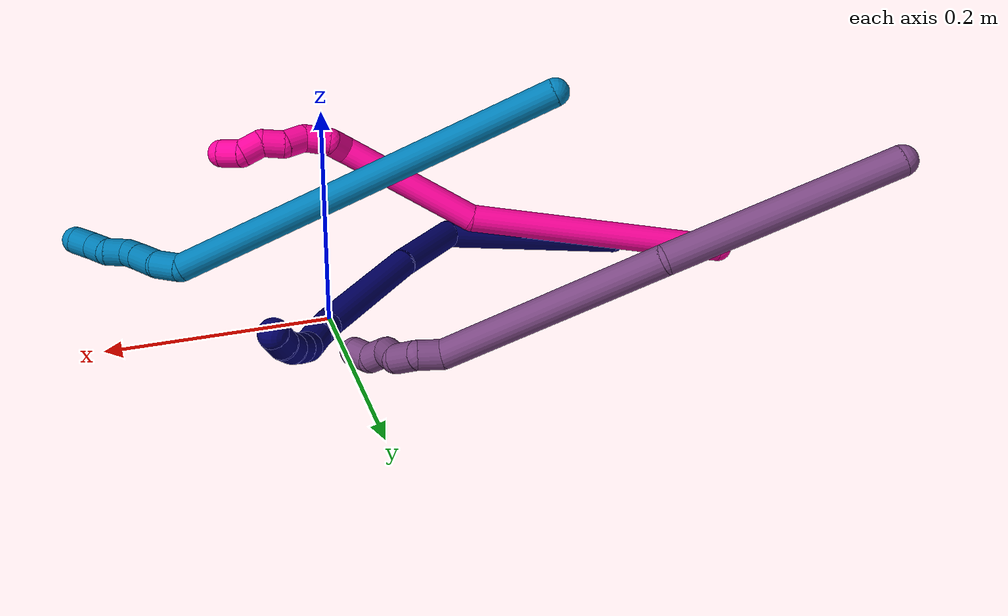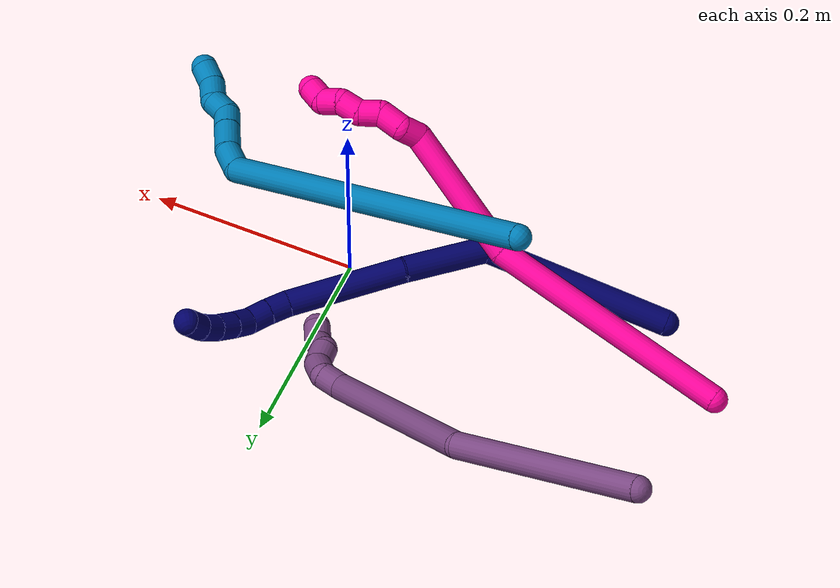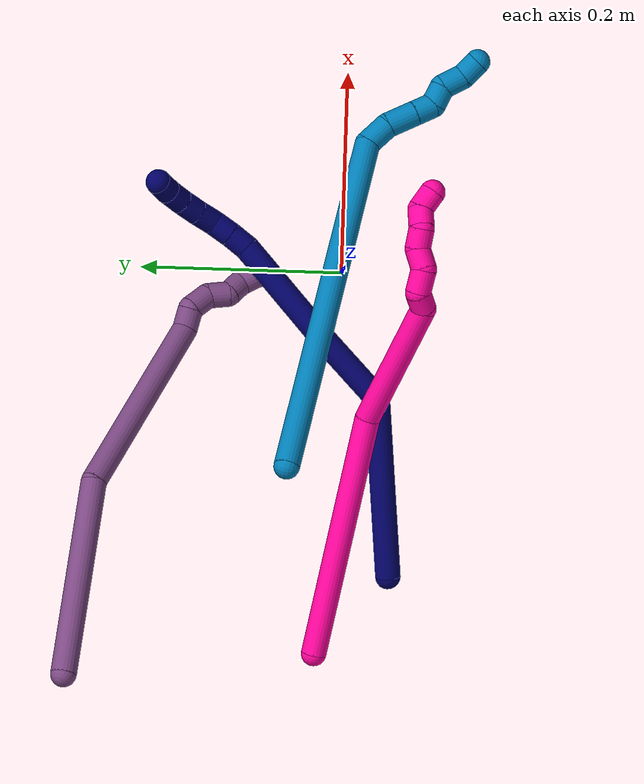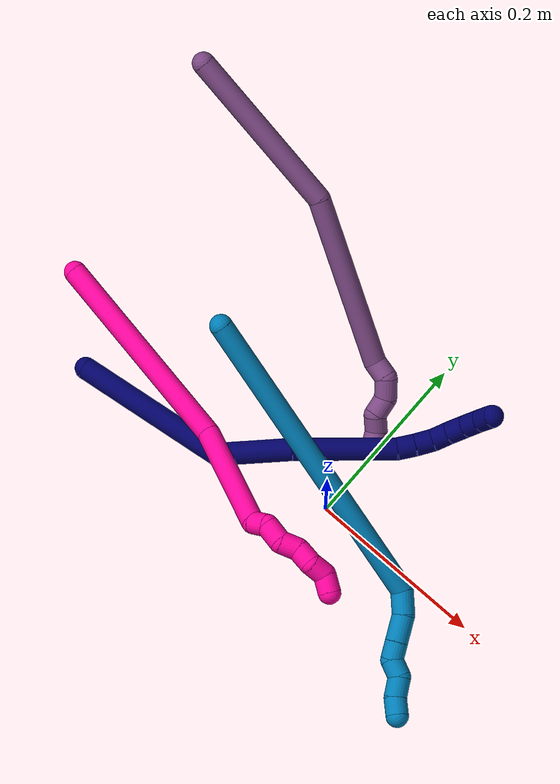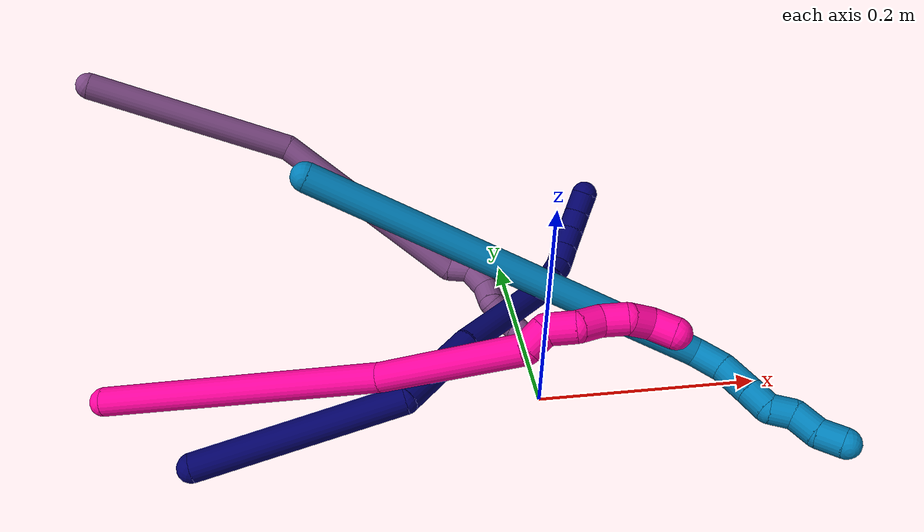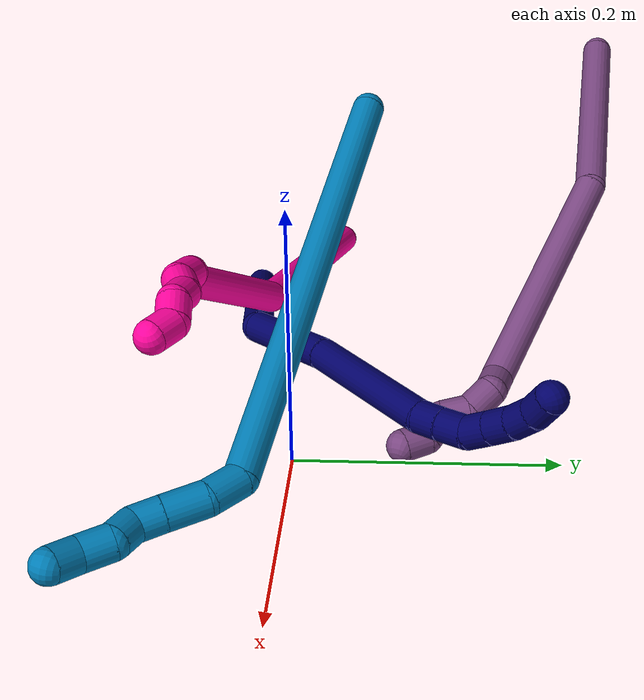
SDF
<sdf version="1.7">
 <world name="default">
  <model name="7">
   <static>0</static>
   <link name="7">
    <collision name="collision-cylinder-e_1_1_4">
     <pose>0.070742 0.036557 -0.043201 -2.4393 0.896063 -1.83909</pose>
     <geometry><cylinder><radius>0.0125</radius><length>0.181187</length></cylinder></geometry>
     <surface>
      <friction><ode><mu>1.16</mu><mu2>1.16</mu2><slip1>0</slip1><slip2>0</slip2></ode></friction>
      <contact><ode><kp>1e+06</kp><kd>1</kd><max_vel>0</max_vel><min_depth>0.001</min_depth></ode></contact>
     </surface>
    </collision>
    <visual name="visual-cylinder-e_1_1_4">
     <pose>0.070742 0.036557 -0.043201 -2.4393 0.896063 -1.83909</pose>
     <geometry><cylinder><radius>0.0125</radius><length>0.181187</length></cylinder></geometry>
     <material><ambient>0.003922 0 0.403922 1</ambient></material>
    </visual>
    <collision name="collision-cylinder-e_2_4_5">
     <pose>0.172308 0.099892 -0.080607 -1.3577 0.844185 -0.69519</pose>
     <geometry><cylinder><radius>0.0125</radius><length>0.082481</length></cylinder></geometry>
     <surface>
      <friction><ode><mu>1.16</mu><mu2>1.16</mu2><slip1>0</slip1><slip2>0</slip2></ode></friction>
      <contact><ode><kp>1e+06</kp><kd>1</kd><max_vel>0</max_vel><min_depth>0.001</min_depth></ode></contact>
     </surface>
    </collision>
    <visual name="visual-cylinder-e_2_4_5">
     <pose>0.172308 0.099892 -0.080607 -1.3577 0.844185 -0.69519</pose>
     <geometry><cylinder><radius>0.0125</radius><length>0.082481</length></cylinder></geometry>
     <material><ambient>0.003922 0 0.403922 1</ambient></material>
    </visual>
    <collision name="collision-cylinder-e_3_5_6">
     <pose>0.240736 0.168911 -0.069754 -1.45159 0.723847 -0.648228</pose>
     <geometry><cylinder><radius>0.0125</radius><length>0.113558</length></cylinder></geometry>
     <surface>
      <friction><ode><mu>1.16</mu><mu2>1.16</mu2><slip1>0</slip1><slip2>0</slip2></ode></friction>
      <contact><ode><kp>1e+06</kp><kd>1</kd><max_vel>0</max_vel><min_depth>0.001</min_depth></ode></contact>
     </surface>
    </collision>
    <visual name="visual-cylinder-e_3_5_6">
     <pose>0.240736 0.168911 -0.069754 -1.45159 0.723847 -0.648228</pose>
     <geometry><cylinder><radius>0.0125</radius><length>0.113558</length></cylinder></geometry>
     <material><ambient>0.003922 0 0.403922 1</ambient></material>
    </visual>
    <collision name="collision-cylinder-e_4_6_7">
     <pose>0.285337 0.217946 -0.061783 -1.16598 0.758018 -0.513669</pose>
     <geometry><cylinder><radius>0.0125</radius><length>0.02036</length></cylinder></geometry>
     <surface>
      <friction><ode><mu>1.16</mu><mu2>1.16</mu2><slip1>0</slip1><slip2>0</slip2></ode></friction>
      <contact><ode><kp>1e+06</kp><kd>1</kd><max_vel>0</max_vel><min_depth>0.001</min_depth></ode></contact>
     </surface>
    </collision>
    <visual name="visual-cylinder-e_4_6_7">
     <pose>0.285337 0.217946 -0.061783 -1.16598 0.758018 -0.513669</pose>
     <geometry><cylinder><radius>0.0125</radius><length>0.02036</length></cylinder></geometry>
     <material><ambient>0.003922 0 0.403922 1</ambient></material>
    </visual>
    <collision name="collision-cylinder-e_5_7_8">
     <pose>0.299317 0.231767 -0.05523 -1.09259 0.722895 -0.451879</pose>
     <geometry><cylinder><radius>0.0125</radius><length>0.021105</length></cylinder></geometry>
     <surface>
      <friction><ode><mu>1.16</mu><mu2>1.16</mu2><slip1>0</slip1><slip2>0</slip2></ode></friction>
      <contact><ode><kp>1e+06</kp><kd>1</kd><max_vel>0</max_vel><min_depth>0.001</min_depth></ode></contact>
     </surface>
    </collision>
    <visual name="visual-cylinder-e_5_7_8">
     <pose>0.299317 0.231767 -0.05523 -1.09259 0.722895 -0.451879</pose>
     <geometry><cylinder><radius>0.0125</radius><length>0.021105</length></cylinder></geometry>
     <material><ambient>0.003922 0 0.403922 1</ambient></material>
    </visual>
    <collision name="collision-cylinder-e_6_8_9">
     <pose>0.315185 0.241624 -0.047339 -0.587738 1.04923 -0.346754</pose>
     <geometry><cylinder><radius>0.0125</radius><length>0.020501</length></cylinder></geometry>
     <surface>
      <friction><ode><mu>1.16</mu><mu2>1.16</mu2><slip1>0</slip1><slip2>0</slip2></ode></friction>
      <contact><ode><kp>1e+06</kp><kd>1</kd><max_vel>0</max_vel><min_depth>0.001</min_depth></ode></contact>
     </surface>
    </collision>
    <visual name="visual-cylinder-e_6_8_9">
     <pose>0.315185 0.241624 -0.047339 -0.587738 1.04923 -0.346754</pose>
     <geometry><cylinder><radius>0.0125</radius><length>0.020501</length></cylinder></geometry>
     <material><ambient>0.003922 0 0.403922 1</ambient></material>
    </visual>
    <collision name="collision-cylinder-e_7_9_10">
     <pose>0.33314 0.24697 -0.039317 -0.588027 1.10725 -0.370028</pose>
     <geometry><cylinder><radius>0.0125</radius><length>0.020274</length></cylinder></geometry>
     <surface>
      <friction><ode><mu>1.16</mu><mu2>1.16</mu2><slip1>0</slip1><slip2>0</slip2></ode></friction>
      <contact><ode><kp>1e+06</kp><kd>1</kd><max_vel>0</max_vel><min_depth>0.001</min_depth></ode></contact>
     </surface>
    </collision>
    <visual name="visual-cylinder-e_7_9_10">
     <pose>0.33314 0.24697 -0.039317 -0.588027 1.10725 -0.370028</pose>
     <geometry><cylinder><radius>0.0125</radius><length>0.020274</length></cylinder></geometry>
     <material><ambient>0.003922 0 0.403922 1</ambient></material>
    </visual>
    <collision name="collision-cylinder-e_8_10_11">
     <pose>0.351697 0.250457 -0.03232 -0.292717 1.22964 -0.207434</pose>
     <geometry><cylinder><radius>0.0125</radius><length>0.02014</length></cylinder></geometry>
     <surface>
      <friction><ode><mu>1.16</mu><mu2>1.16</mu2><slip1>0</slip1><slip2>0</slip2></ode></friction>
      <contact><ode><kp>1e+06</kp><kd>1</kd><max_vel>0</max_vel><min_depth>0.001</min_depth></ode></contact>
     </surface>
    </collision>
    <visual name="visual-cylinder-e_8_10_11">
     <pose>0.351697 0.250457 -0.03232 -0.292717 1.22964 -0.207434</pose>
     <geometry><cylinder><radius>0.0125</radius><length>0.02014</length></cylinder></geometry>
     <material><ambient>0.003922 0 0.403922 1</ambient></material>
    </visual>
    <collision name="collision-cylinder-e_9_11_2">
     <pose>0.371085 0.250228 -0.026956 0.511776 1.32786 0.403821</pose>
     <geometry><cylinder><radius>0.0125</radius><length>0.020395</length></cylinder></geometry>
     <surface>
      <friction><ode><mu>1.16</mu><mu2>1.16</mu2><slip1>0</slip1><slip2>0</slip2></ode></friction>
      <contact><ode><kp>1e+06</kp><kd>1</kd><max_vel>0</max_vel><min_depth>0.001</min_depth></ode></contact>
     </surface>
    </collision>
    <visual name="visual-cylinder-e_9_11_2">
     <pose>0.371085 0.250228 -0.026956 0.511776 1.32786 0.403821</pose>
     <geometry><cylinder><radius>0.0125</radius><length>0.020395</length></cylinder></geometry>
     <material><ambient>0.003922 0 0.403922 1</ambient></material>
    </visual>
    <collision name="collision-sphere-2">
     <pose>0.380983 0.249027 -0.024817 0 -0 0</pose>
     <geometry><sphere><radius>0.0125</radius></sphere></geometry>
     <surface>
      <friction><ode><mu>1.16</mu><mu2>1.16</mu2><slip1>0</slip1><slip2>0</slip2></ode></friction>
      <contact><ode><kp>1e+06</kp><kd>1</kd><max_vel>0</max_vel><min_depth>0.001</min_depth></ode></contact>
     </surface>
    </collision>
    <visual name="visual-sphere-2">
     <pose>0.380983 0.249027 -0.024817 0 -0 0</pose>
     <geometry><sphere><radius>0.0125</radius></sphere></geometry>
     <material><ambient>0.003922 0 0.403922 1</ambient></material>
    </visual>
    <collision name="collision-sphere-11">
     <pose>0.361187 0.251429 -0.029094 0 -0 0</pose>
     <geometry><sphere><radius>0.0125</radius></sphere></geometry>
     <surface>
      <friction><ode><mu>1.16</mu><mu2>1.16</mu2><slip1>0</slip1><slip2>0</slip2></ode></friction>
      <contact><ode><kp>1e+06</kp><kd>1</kd><max_vel>0</max_vel><min_depth>0.001</min_depth></ode></contact>
     </surface>
    </collision>
    <visual name="visual-sphere-11">
     <pose>0.361187 0.251429 -0.029094 0 -0 0</pose>
     <geometry><sphere><radius>0.0125</radius></sphere></geometry>
     <material><ambient>0.003922 0 0.403922 1</ambient></material>
    </visual>
    <collision name="collision-sphere-10">
     <pose>0.342207 0.249485 -0.035546 0 -0 0</pose>
     <geometry><sphere><radius>0.0125</radius></sphere></geometry>
     <surface>
      <friction><ode><mu>1.16</mu><mu2>1.16</mu2><slip1>0</slip1><slip2>0</slip2></ode></friction>
      <contact><ode><kp>1e+06</kp><kd>1</kd><max_vel>0</max_vel><min_depth>0.001</min_depth></ode></contact>
     </surface>
    </collision>
    <visual name="visual-sphere-10">
     <pose>0.342207 0.249485 -0.035546 0 -0 0</pose>
     <geometry><sphere><radius>0.0125</radius></sphere></geometry>
     <material><ambient>0.003922 0 0.403922 1</ambient></material>
    </visual>
    <collision name="collision-sphere-9">
     <pose>0.324073 0.244456 -0.043089 0 -0 0</pose>
     <geometry><sphere><radius>0.0125</radius></sphere></geometry>
     <surface>
      <friction><ode><mu>1.16</mu><mu2>1.16</mu2><slip1>0</slip1><slip2>0</slip2></ode></friction>
      <contact><ode><kp>1e+06</kp><kd>1</kd><max_vel>0</max_vel><min_depth>0.001</min_depth></ode></contact>
     </surface>
    </collision>
    <visual name="visual-sphere-9">
     <pose>0.324073 0.244456 -0.043089 0 -0 0</pose>
     <geometry><sphere><radius>0.0125</radius></sphere></geometry>
     <material><ambient>0.003922 0 0.403922 1</ambient></material>
    </visual>
    <collision name="collision-sphere-4">
     <pose>0.141484 0.073114 -0.086402 0 -0 0</pose>
     <geometry><sphere><radius>0.0125</radius></sphere></geometry>
     <surface>
      <friction><ode><mu>1.16</mu><mu2>1.16</mu2><slip1>0</slip1><slip2>0</slip2></ode></friction>
      <contact><ode><kp>1e+06</kp><kd>1</kd><max_vel>0</max_vel><min_depth>0.001</min_depth></ode></contact>
     </surface>
    </collision>
    <visual name="visual-sphere-4">
     <pose>0.141484 0.073114 -0.086402 0 -0 0</pose>
     <geometry><sphere><radius>0.0125</radius></sphere></geometry>
     <material><ambient>0.003922 0 0.403922 1</ambient></material>
    </visual>
    <collision name="collision-sphere-1">
     <geometry><sphere><radius>0.0125</radius></sphere></geometry>
     <surface>
      <friction><ode><mu>1.16</mu><mu2>1.16</mu2><slip1>0</slip1><slip2>0</slip2></ode></friction>
      <contact><ode><kp>1e+06</kp><kd>1</kd><max_vel>0</max_vel><min_depth>0.001</min_depth></ode></contact>
     </surface>
    </collision>
    <visual name="visual-sphere-1">
     <geometry><sphere><radius>0.0125</radius></sphere></geometry>
     <material><ambient>0.003922 0 0.403922 1</ambient></material>
    </visual>
    <collision name="collision-sphere-8">
     <pose>0.306298 0.238793 -0.051589 0 -0 0</pose>
     <geometry><sphere><radius>0.0125</radius></sphere></geometry>
     <surface>
      <friction><ode><mu>1.16</mu><mu2>1.16</mu2><slip1>0</slip1><slip2>0</slip2></ode></friction>
      <contact><ode><kp>1e+06</kp><kd>1</kd><max_vel>0</max_vel><min_depth>0.001</min_depth></ode></contact>
     </surface>
    </collision>
    <visual name="visual-sphere-8">
     <pose>0.306298 0.238793 -0.051589 0 -0 0</pose>
     <geometry><sphere><radius>0.0125</radius></sphere></geometry>
     <material><ambient>0.003922 0 0.403922 1</ambient></material>
    </visual>
    <collision name="collision-sphere-5">
     <pose>0.203133 0.12667 -0.074813 0 -0 0</pose>
     <geometry><sphere><radius>0.0125</radius></sphere></geometry>
     <surface>
      <friction><ode><mu>1.16</mu><mu2>1.16</mu2><slip1>0</slip1><slip2>0</slip2></ode></friction>
      <contact><ode><kp>1e+06</kp><kd>1</kd><max_vel>0</max_vel><min_depth>0.001</min_depth></ode></contact>
     </surface>
    </collision>
    <visual name="visual-sphere-5">
     <pose>0.203133 0.12667 -0.074813 0 -0 0</pose>
     <geometry><sphere><radius>0.0125</radius></sphere></geometry>
     <material><ambient>0.003922 0 0.403922 1</ambient></material>
    </visual>
    <collision name="collision-sphere-6">
     <pose>0.278339 0.211151 -0.064695 0 -0 0</pose>
     <geometry><sphere><radius>0.0125</radius></sphere></geometry>
     <surface>
      <friction><ode><mu>1.16</mu><mu2>1.16</mu2><slip1>0</slip1><slip2>0</slip2></ode></friction>
      <contact><ode><kp>1e+06</kp><kd>1</kd><max_vel>0</max_vel><min_depth>0.001</min_depth></ode></contact>
     </surface>
    </collision>
    <visual name="visual-sphere-6">
     <pose>0.278339 0.211151 -0.064695 0 -0 0</pose>
     <geometry><sphere><radius>0.0125</radius></sphere></geometry>
     <material><ambient>0.003922 0 0.403922 1</ambient></material>
    </visual>
    <collision name="collision-sphere-7">
     <pose>0.292336 0.224742 -0.058872 0 -0 0</pose>
     <geometry><sphere><radius>0.0125</radius></sphere></geometry>
     <surface>
      <friction><ode><mu>1.16</mu><mu2>1.16</mu2><slip1>0</slip1><slip2>0</slip2></ode></friction>
      <contact><ode><kp>1e+06</kp><kd>1</kd><max_vel>0</max_vel><min_depth>0.001</min_depth></ode></contact>
     </surface>
    </collision>
    <visual name="visual-sphere-7">
     <pose>0.292336 0.224742 -0.058872 0 -0 0</pose>
     <geometry><sphere><radius>0.0125</radius></sphere></geometry>
     <material><ambient>0.003922 0 0.403922 1</ambient></material>
    </visual>
    <inertial>
     <pose>0.188721 0.126962 -0.055578 0 -0 0</pose>
     <mass>0.5</mass>
     <inertia>
      <ixx>-0.000331</ixx>
      <ixy>0</ixy>
      <ixz>0</ixz>
      <iyy>8.4e-05</iyy>
      <iyz>0</iyz>
      <izz>-0.000855</izz>
     </inertia>
    </inertial>
   </link>
   <pose>-0.299652 -0.055367 0.011488 -1.4433 -0.774807 0.543983</pose>
  </model>
  <model name="9">
   <static>0</static>
   <link name="9">
    <collision name="collision-cylinder-e_1_1_4">
     <pose>0.179231 -0.006785 0.01175 0.523675 1.49524 0.487075</pose>
     <geometry><cylinder><radius>0.0125</radius><length>0.359488</length></cylinder></geometry>
     <surface>
      <friction><ode><mu>1.16</mu><mu2>1.16</mu2><slip1>0</slip1><slip2>0</slip2></ode></friction>
      <contact><ode><kp>1e+06</kp><kd>1</kd><max_vel>0</max_vel><min_depth>0.001</min_depth></ode></contact>
     </surface>
    </collision>
    <visual name="visual-cylinder-e_1_1_4">
     <pose>0.179231 -0.006785 0.01175 0.523675 1.49524 0.487075</pose>
     <geometry><cylinder><radius>0.0125</radius><length>0.359488</length></cylinder></geometry>
     <material><ambient>0 0.490196 0.709804 1</ambient></material>
    </visual>
    <collision name="collision-cylinder-e_2_4_5">
     <pose>0.369671 -0.016506 0.01656 2.74136 0.978907 2.41395</pose>
     <geometry><cylinder><radius>0.0125</radius><length>0.027012</length></cylinder></geometry>
     <surface>
      <friction><ode><mu>1.16</mu><mu2>1.16</mu2><slip1>0</slip1><slip2>0</slip2></ode></friction>
      <contact><ode><kp>1e+06</kp><kd>1</kd><max_vel>0</max_vel><min_depth>0.001</min_depth></ode></contact>
     </surface>
    </collision>
    <visual name="visual-cylinder-e_2_4_5">
     <pose>0.369671 -0.016506 0.01656 2.74136 0.978907 2.41395</pose>
     <geometry><cylinder><radius>0.0125</radius><length>0.027012</length></cylinder></geometry>
     <material><ambient>0 0.490196 0.709804 1</ambient></material>
    </visual>
    <collision name="collision-cylinder-e_3_5_6">
     <pose>0.390722 -0.020793 -0.001499 3.02072 0.720933 2.82326</pose>
     <geometry><cylinder><radius>0.0125</radius><length>0.029822</length></cylinder></geometry>
     <surface>
      <friction><ode><mu>1.16</mu><mu2>1.16</mu2><slip1>0</slip1><slip2>0</slip2></ode></friction>
      <contact><ode><kp>1e+06</kp><kd>1</kd><max_vel>0</max_vel><min_depth>0.001</min_depth></ode></contact>
     </surface>
    </collision>
    <visual name="visual-cylinder-e_3_5_6">
     <pose>0.390722 -0.020793 -0.001499 3.02072 0.720933 2.82326</pose>
     <geometry><cylinder><radius>0.0125</radius><length>0.029822</length></cylinder></geometry>
     <material><ambient>0 0.490196 0.709804 1</ambient></material>
    </visual>
    <collision name="collision-cylinder-e_4_6_7">
     <pose>0.407339 -0.022851 -0.020121 3.04751 0.732264 2.89726</pose>
     <geometry><cylinder><radius>0.0125</radius><length>0.020267</length></cylinder></geometry>
     <surface>
      <friction><ode><mu>1.16</mu><mu2>1.16</mu2><slip1>0</slip1><slip2>0</slip2></ode></friction>
      <contact><ode><kp>1e+06</kp><kd>1</kd><max_vel>0</max_vel><min_depth>0.001</min_depth></ode></contact>
     </surface>
    </collision>
    <visual name="visual-cylinder-e_4_6_7">
     <pose>0.407339 -0.022851 -0.020121 3.04751 0.732264 2.89726</pose>
     <geometry><cylinder><radius>0.0125</radius><length>0.020267</length></cylinder></geometry>
     <material><ambient>0 0.490196 0.709804 1</ambient></material>
    </visual>
    <collision name="collision-cylinder-e_5_7_8">
     <pose>0.423037 -0.027683 -0.029638 2.02529 1.09575 1.54781</pose>
     <geometry><cylinder><radius>0.0125</radius><length>0.02007</length></cylinder></geometry>
     <surface>
      <friction><ode><mu>1.16</mu><mu2>1.16</mu2><slip1>0</slip1><slip2>0</slip2></ode></friction>
      <contact><ode><kp>1e+06</kp><kd>1</kd><max_vel>0</max_vel><min_depth>0.001</min_depth></ode></contact>
     </surface>
    </collision>
    <visual name="visual-cylinder-e_5_7_8">
     <pose>0.423037 -0.027683 -0.029638 2.02529 1.09575 1.54781</pose>
     <geometry><cylinder><radius>0.0125</radius><length>0.02007</length></cylinder></geometry>
     <material><ambient>0 0.490196 0.709804 1</ambient></material>
    </visual>
    <collision name="collision-cylinder-e_6_8_9">
     <pose>0.439783 -0.033298 -0.039871 2.96204 0.752634 2.69363</pose>
     <geometry><cylinder><radius>0.0125</radius><length>0.022885</length></cylinder></geometry>
     <surface>
      <friction><ode><mu>1.16</mu><mu2>1.16</mu2><slip1>0</slip1><slip2>0</slip2></ode></friction>
      <contact><ode><kp>1e+06</kp><kd>1</kd><max_vel>0</max_vel><min_depth>0.001</min_depth></ode></contact>
     </surface>
    </collision>
    <visual name="visual-cylinder-e_6_8_9">
     <pose>0.439783 -0.033298 -0.039871 2.96204 0.752634 2.69363</pose>
     <geometry><cylinder><radius>0.0125</radius><length>0.022885</length></cylinder></geometry>
     <material><ambient>0 0.490196 0.709804 1</ambient></material>
    </visual>
    <collision name="collision-cylinder-e_7_9_2">
     <pose>0.455312 -0.039068 -0.053276 2.45203 0.853406 1.80447</pose>
     <geometry><cylinder><radius>0.0125</radius><length>0.020456</length></cylinder></geometry>
     <surface>
      <friction><ode><mu>1.16</mu><mu2>1.16</mu2><slip1>0</slip1><slip2>0</slip2></ode></friction>
      <contact><ode><kp>1e+06</kp><kd>1</kd><max_vel>0</max_vel><min_depth>0.001</min_depth></ode></contact>
     </surface>
    </collision>
    <visual name="visual-cylinder-e_7_9_2">
     <pose>0.455312 -0.039068 -0.053276 2.45203 0.853406 1.80447</pose>
     <geometry><cylinder><radius>0.0125</radius><length>0.020456</length></cylinder></geometry>
     <material><ambient>0 0.490196 0.709804 1</ambient></material>
    </visual>
    <collision name="collision-sphere-2">
     <pose>0.463019 -0.043346 -0.058464 0 -0 0</pose>
     <geometry><sphere><radius>0.0125</radius></sphere></geometry>
     <surface>
      <friction><ode><mu>1.16</mu><mu2>1.16</mu2><slip1>0</slip1><slip2>0</slip2></ode></friction>
      <contact><ode><kp>1e+06</kp><kd>1</kd><max_vel>0</max_vel><min_depth>0.001</min_depth></ode></contact>
     </surface>
    </collision>
    <visual name="visual-sphere-2">
     <pose>0.463019 -0.043346 -0.058464 0 -0 0</pose>
     <geometry><sphere><radius>0.0125</radius></sphere></geometry>
     <material><ambient>0 0.490196 0.709804 1</ambient></material>
    </visual>
    <collision name="collision-sphere-9">
     <pose>0.447605 -0.03479 -0.048089 0 -0 0</pose>
     <geometry><sphere><radius>0.0125</radius></sphere></geometry>
     <surface>
      <friction><ode><mu>1.16</mu><mu2>1.16</mu2><slip1>0</slip1><slip2>0</slip2></ode></friction>
      <contact><ode><kp>1e+06</kp><kd>1</kd><max_vel>0</max_vel><min_depth>0.001</min_depth></ode></contact>
     </surface>
    </collision>
    <visual name="visual-sphere-9">
     <pose>0.447605 -0.03479 -0.048089 0 -0 0</pose>
     <geometry><sphere><radius>0.0125</radius></sphere></geometry>
     <material><ambient>0 0.490196 0.709804 1</ambient></material>
    </visual>
    <collision name="collision-sphere-4">
     <pose>0.358462 -0.01357 0.0235 0 -0 0</pose>
     <geometry><sphere><radius>0.0125</radius></sphere></geometry>
     <surface>
      <friction><ode><mu>1.16</mu><mu2>1.16</mu2><slip1>0</slip1><slip2>0</slip2></ode></friction>
      <contact><ode><kp>1e+06</kp><kd>1</kd><max_vel>0</max_vel><min_depth>0.001</min_depth></ode></contact>
     </surface>
    </collision>
    <visual name="visual-sphere-4">
     <pose>0.358462 -0.01357 0.0235 0 -0 0</pose>
     <geometry><sphere><radius>0.0125</radius></sphere></geometry>
     <material><ambient>0 0.490196 0.709804 1</ambient></material>
    </visual>
    <collision name="collision-sphere-1">
     <geometry><sphere><radius>0.0125</radius></sphere></geometry>
     <surface>
      <friction><ode><mu>1.16</mu><mu2>1.16</mu2><slip1>0</slip1><slip2>0</slip2></ode></friction>
      <contact><ode><kp>1e+06</kp><kd>1</kd><max_vel>0</max_vel><min_depth>0.001</min_depth></ode></contact>
     </surface>
    </collision>
    <visual name="visual-sphere-1">
     <geometry><sphere><radius>0.0125</radius></sphere></geometry>
     <material><ambient>0 0.490196 0.709804 1</ambient></material>
    </visual>
    <collision name="collision-sphere-8">
     <pose>0.431961 -0.031807 -0.031653 0 -0 0</pose>
     <geometry><sphere><radius>0.0125</radius></sphere></geometry>
     <surface>
      <friction><ode><mu>1.16</mu><mu2>1.16</mu2><slip1>0</slip1><slip2>0</slip2></ode></friction>
      <contact><ode><kp>1e+06</kp><kd>1</kd><max_vel>0</max_vel><min_depth>0.001</min_depth></ode></contact>
     </surface>
    </collision>
    <visual name="visual-sphere-8">
     <pose>0.431961 -0.031807 -0.031653 0 -0 0</pose>
     <geometry><sphere><radius>0.0125</radius></sphere></geometry>
     <material><ambient>0 0.490196 0.709804 1</ambient></material>
    </visual>
    <collision name="collision-sphere-5">
     <pose>0.380879 -0.019442 0.00962 0 -0 0</pose>
     <geometry><sphere><radius>0.0125</radius></sphere></geometry>
     <surface>
      <friction><ode><mu>1.16</mu><mu2>1.16</mu2><slip1>0</slip1><slip2>0</slip2></ode></friction>
      <contact><ode><kp>1e+06</kp><kd>1</kd><max_vel>0</max_vel><min_depth>0.001</min_depth></ode></contact>
     </surface>
    </collision>
    <visual name="visual-sphere-5">
     <pose>0.380879 -0.019442 0.00962 0 -0 0</pose>
     <geometry><sphere><radius>0.0125</radius></sphere></geometry>
     <material><ambient>0 0.490196 0.709804 1</ambient></material>
    </visual>
    <collision name="collision-sphere-6">
     <pose>0.400564 -0.022143 -0.012618 0 -0 0</pose>
     <geometry><sphere><radius>0.0125</radius></sphere></geometry>
     <surface>
      <friction><ode><mu>1.16</mu><mu2>1.16</mu2><slip1>0</slip1><slip2>0</slip2></ode></friction>
      <contact><ode><kp>1e+06</kp><kd>1</kd><max_vel>0</max_vel><min_depth>0.001</min_depth></ode></contact>
     </surface>
    </collision>
    <visual name="visual-sphere-6">
     <pose>0.400564 -0.022143 -0.012618 0 -0 0</pose>
     <geometry><sphere><radius>0.0125</radius></sphere></geometry>
     <material><ambient>0 0.490196 0.709804 1</ambient></material>
    </visual>
    <collision name="collision-sphere-7">
     <pose>0.414114 -0.023559 -0.027623 0 -0 0</pose>
     <geometry><sphere><radius>0.0125</radius></sphere></geometry>
     <surface>
      <friction><ode><mu>1.16</mu><mu2>1.16</mu2><slip1>0</slip1><slip2>0</slip2></ode></friction>
      <contact><ode><kp>1e+06</kp><kd>1</kd><max_vel>0</max_vel><min_depth>0.001</min_depth></ode></contact>
     </surface>
    </collision>
    <visual name="visual-sphere-7">
     <pose>0.414114 -0.023559 -0.027623 0 -0 0</pose>
     <geometry><sphere><radius>0.0125</radius></sphere></geometry>
     <material><ambient>0 0.490196 0.709804 1</ambient></material>
    </visual>
    <inertial>
     <pose>0.244387 -0.01217 0.003243 0 -0 0</pose>
     <mass>0.5</mass>
     <inertia>
      <ixx>0.000431</ixx>
      <ixy>0</ixy>
      <ixz>0</ixz>
      <iyy>0.00403</iyy>
      <iyz>0</iyz>
      <izz>-0.003739</izz>
     </inertia>
    </inertial>
   </link>
   <pose>-0.191512 0.049014 0.21486 -1.71115 0.471036 -0.292632</pose>
  </model>
  <model name="18">
   <static>0</static>
   <link name="18">
    <collision name="collision-cylinder-e_1_1_4">
     <pose>0.090903 0.011259 0.079344 -0.140961 0.848248 -0.063732</pose>
     <geometry><cylinder><radius>0.0125</radius><length>0.242368</length></cylinder></geometry>
     <surface>
      <friction><ode><mu>1.16</mu><mu2>1.16</mu2><slip1>0</slip1><slip2>0</slip2></ode></friction>
      <contact><ode><kp>1e+06</kp><kd>1</kd><max_vel>0</max_vel><min_depth>0.001</min_depth></ode></contact>
     </surface>
    </collision>
    <visual name="visual-cylinder-e_1_1_4">
     <pose>0.090903 0.011259 0.079344 -0.140961 0.848248 -0.063732</pose>
     <geometry><cylinder><radius>0.0125</radius><length>0.242368</length></cylinder></geometry>
     <material><ambient>1 0.007843 0.615686 1</ambient></material>
    </visual>
    <collision name="collision-cylinder-e_2_4_5">
     <pose>0.216181 0.013443 0.214903 0.160059 0.543117 0.044654</pose>
     <geometry><cylinder><radius>0.0125</radius><length>0.13303</length></cylinder></geometry>
     <surface>
      <friction><ode><mu>1.16</mu><mu2>1.16</mu2><slip1>0</slip1><slip2>0</slip2></ode></friction>
      <contact><ode><kp>1e+06</kp><kd>1</kd><max_vel>0</max_vel><min_depth>0.001</min_depth></ode></contact>
     </surface>
    </collision>
    <visual name="visual-cylinder-e_2_4_5">
     <pose>0.216181 0.013443 0.214903 0.160059 0.543117 0.044654</pose>
     <geometry><cylinder><radius>0.0125</radius><length>0.13303</length></cylinder></geometry>
     <material><ambient>1 0.007843 0.615686 1</ambient></material>
    </visual>
    <collision name="collision-cylinder-e_3_5_6">
     <pose>0.252896 0.009352 0.279523 -0.53535 0.235061 -0.064743</pose>
     <geometry><cylinder><radius>0.0125</radius><length>0.020095</length></cylinder></geometry>
     <surface>
      <friction><ode><mu>1.16</mu><mu2>1.16</mu2><slip1>0</slip1><slip2>0</slip2></ode></friction>
      <contact><ode><kp>1e+06</kp><kd>1</kd><max_vel>0</max_vel><min_depth>0.001</min_depth></ode></contact>
     </surface>
    </collision>
    <visual name="visual-cylinder-e_3_5_6">
     <pose>0.252896 0.009352 0.279523 -0.53535 0.235061 -0.064743</pose>
     <geometry><cylinder><radius>0.0125</radius><length>0.020095</length></cylinder></geometry>
     <material><ambient>1 0.007843 0.615686 1</ambient></material>
    </visual>
    <collision name="collision-cylinder-e_4_6_7">
     <pose>0.264002 0.015147 0.295701 -0.103868 0.842636 -0.046582</pose>
     <geometry><cylinder><radius>0.0125</radius><length>0.023489</length></cylinder></geometry>
     <surface>
      <friction><ode><mu>1.16</mu><mu2>1.16</mu2><slip1>0</slip1><slip2>0</slip2></ode></friction>
      <contact><ode><kp>1e+06</kp><kd>1</kd><max_vel>0</max_vel><min_depth>0.001</min_depth></ode></contact>
     </surface>
    </collision>
    <visual name="visual-cylinder-e_4_6_7">
     <pose>0.264002 0.015147 0.295701 -0.103868 0.842636 -0.046582</pose>
     <geometry><cylinder><radius>0.0125</radius><length>0.023489</length></cylinder></geometry>
     <material><ambient>1 0.007843 0.615686 1</ambient></material>
    </visual>
    <collision name="collision-cylinder-e_5_7_8">
     <pose>0.280267 0.021918 0.307201 -1.01204 0.817687 -0.471252</pose>
     <geometry><cylinder><radius>0.0125</radius><length>0.020557</length></cylinder></geometry>
     <surface>
      <friction><ode><mu>1.16</mu><mu2>1.16</mu2><slip1>0</slip1><slip2>0</slip2></ode></friction>
      <contact><ode><kp>1e+06</kp><kd>1</kd><max_vel>0</max_vel><min_depth>0.001</min_depth></ode></contact>
     </surface>
    </collision>
    <visual name="visual-cylinder-e_5_7_8">
     <pose>0.280267 0.021918 0.307201 -1.01204 0.817687 -0.471252</pose>
     <geometry><cylinder><radius>0.0125</radius><length>0.020557</length></cylinder></geometry>
     <material><ambient>1 0.007843 0.615686 1</ambient></material>
    </visual>
    <collision name="collision-cylinder-e_6_8_9">
     <pose>0.295713 0.029111 0.317143 -0.195754 0.897685 -0.094512</pose>
     <geometry><cylinder><radius>0.0125</radius><length>0.020327</length></cylinder></geometry>
     <surface>
      <friction><ode><mu>1.16</mu><mu2>1.16</mu2><slip1>0</slip1><slip2>0</slip2></ode></friction>
      <contact><ode><kp>1e+06</kp><kd>1</kd><max_vel>0</max_vel><min_depth>0.001</min_depth></ode></contact>
     </surface>
    </collision>
    <visual name="visual-cylinder-e_6_8_9">
     <pose>0.295713 0.029111 0.317143 -0.195754 0.897685 -0.094512</pose>
     <geometry><cylinder><radius>0.0125</radius><length>0.020327</length></cylinder></geometry>
     <material><ambient>1 0.007843 0.615686 1</ambient></material>
    </visual>
    <collision name="collision-cylinder-e_7_9_10">
     <pose>0.312968 0.033774 0.324644 -1.21231 1.19581 -0.882191</pose>
     <geometry><cylinder><radius>0.0125</radius><length>0.020006</length></cylinder></geometry>
     <surface>
      <friction><ode><mu>1.16</mu><mu2>1.16</mu2><slip1>0</slip1><slip2>0</slip2></ode></friction>
      <contact><ode><kp>1e+06</kp><kd>1</kd><max_vel>0</max_vel><min_depth>0.001</min_depth></ode></contact>
     </surface>
    </collision>
    <visual name="visual-cylinder-e_7_9_10">
     <pose>0.312968 0.033774 0.324644 -1.21231 1.19581 -0.882191</pose>
     <geometry><cylinder><radius>0.0125</radius><length>0.020006</length></cylinder></geometry>
     <material><ambient>1 0.007843 0.615686 1</ambient></material>
    </visual>
    <collision name="collision-cylinder-e_8_10_2">
     <pose>0.331092 0.03422 0.329757 0.662203 1.0675 0.400841</pose>
     <geometry><cylinder><radius>0.0125</radius><length>0.020128</length></cylinder></geometry>
     <surface>
      <friction><ode><mu>1.16</mu><mu2>1.16</mu2><slip1>0</slip1><slip2>0</slip2></ode></friction>
      <contact><ode><kp>1e+06</kp><kd>1</kd><max_vel>0</max_vel><min_depth>0.001</min_depth></ode></contact>
     </surface>
    </collision>
    <visual name="visual-cylinder-e_8_10_2">
     <pose>0.331092 0.03422 0.329757 0.662203 1.0675 0.400841</pose>
     <geometry><cylinder><radius>0.0125</radius><length>0.020128</length></cylinder></geometry>
     <material><ambient>1 0.007843 0.615686 1</ambient></material>
    </visual>
    <collision name="collision-sphere-2">
     <pose>0.339908 0.031236 0.333585 0 -0 0</pose>
     <geometry><sphere><radius>0.0125</radius></sphere></geometry>
     <surface>
      <friction><ode><mu>1.16</mu><mu2>1.16</mu2><slip1>0</slip1><slip2>0</slip2></ode></friction>
      <contact><ode><kp>1e+06</kp><kd>1</kd><max_vel>0</max_vel><min_depth>0.001</min_depth></ode></contact>
     </surface>
    </collision>
    <visual name="visual-sphere-2">
     <pose>0.339908 0.031236 0.333585 0 -0 0</pose>
     <geometry><sphere><radius>0.0125</radius></sphere></geometry>
     <material><ambient>1 0.007843 0.615686 1</ambient></material>
    </visual>
    <collision name="collision-sphere-10">
     <pose>0.322276 0.037205 0.325929 0 -0 0</pose>
     <geometry><sphere><radius>0.0125</radius></sphere></geometry>
     <surface>
      <friction><ode><mu>1.16</mu><mu2>1.16</mu2><slip1>0</slip1><slip2>0</slip2></ode></friction>
      <contact><ode><kp>1e+06</kp><kd>1</kd><max_vel>0</max_vel><min_depth>0.001</min_depth></ode></contact>
     </surface>
    </collision>
    <visual name="visual-sphere-10">
     <pose>0.322276 0.037205 0.325929 0 -0 0</pose>
     <geometry><sphere><radius>0.0125</radius></sphere></geometry>
     <material><ambient>1 0.007843 0.615686 1</ambient></material>
    </visual>
    <collision name="collision-sphere-9">
     <pose>0.30366 0.030343 0.323358 0 -0 0</pose>
     <geometry><sphere><radius>0.0125</radius></sphere></geometry>
     <surface>
      <friction><ode><mu>1.16</mu><mu2>1.16</mu2><slip1>0</slip1><slip2>0</slip2></ode></friction>
      <contact><ode><kp>1e+06</kp><kd>1</kd><max_vel>0</max_vel><min_depth>0.001</min_depth></ode></contact>
     </surface>
    </collision>
    <visual name="visual-sphere-9">
     <pose>0.30366 0.030343 0.323358 0 -0 0</pose>
     <geometry><sphere><radius>0.0125</radius></sphere></geometry>
     <material><ambient>1 0.007843 0.615686 1</ambient></material>
    </visual>
    <collision name="collision-sphere-4">
     <pose>0.181806 0.022518 0.158688 0 -0 0</pose>
     <geometry><sphere><radius>0.0125</radius></sphere></geometry>
     <surface>
      <friction><ode><mu>1.16</mu><mu2>1.16</mu2><slip1>0</slip1><slip2>0</slip2></ode></friction>
      <contact><ode><kp>1e+06</kp><kd>1</kd><max_vel>0</max_vel><min_depth>0.001</min_depth></ode></contact>
     </surface>
    </collision>
    <visual name="visual-sphere-4">
     <pose>0.181806 0.022518 0.158688 0 -0 0</pose>
     <geometry><sphere><radius>0.0125</radius></sphere></geometry>
     <material><ambient>1 0.007843 0.615686 1</ambient></material>
    </visual>
    <collision name="collision-sphere-1">
     <geometry><sphere><radius>0.0125</radius></sphere></geometry>
     <surface>
      <friction><ode><mu>1.16</mu><mu2>1.16</mu2><slip1>0</slip1><slip2>0</slip2></ode></friction>
      <contact><ode><kp>1e+06</kp><kd>1</kd><max_vel>0</max_vel><min_depth>0.001</min_depth></ode></contact>
     </surface>
    </collision>
    <visual name="visual-sphere-1">
     <geometry><sphere><radius>0.0125</radius></sphere></geometry>
     <material><ambient>1 0.007843 0.615686 1</ambient></material>
    </visual>
    <collision name="collision-sphere-8">
     <pose>0.287766 0.027878 0.310928 0 -0 0</pose>
     <geometry><sphere><radius>0.0125</radius></sphere></geometry>
     <surface>
      <friction><ode><mu>1.16</mu><mu2>1.16</mu2><slip1>0</slip1><slip2>0</slip2></ode></friction>
      <contact><ode><kp>1e+06</kp><kd>1</kd><max_vel>0</max_vel><min_depth>0.001</min_depth></ode></contact>
     </surface>
    </collision>
    <visual name="visual-sphere-8">
     <pose>0.287766 0.027878 0.310928 0 -0 0</pose>
     <geometry><sphere><radius>0.0125</radius></sphere></geometry>
     <material><ambient>1 0.007843 0.615686 1</ambient></material>
    </visual>
    <collision name="collision-sphere-5">
     <pose>0.250556 0.004367 0.271119 0 -0 0</pose>
     <geometry><sphere><radius>0.0125</radius></sphere></geometry>
     <surface>
      <friction><ode><mu>1.16</mu><mu2>1.16</mu2><slip1>0</slip1><slip2>0</slip2></ode></friction>
      <contact><ode><kp>1e+06</kp><kd>1</kd><max_vel>0</max_vel><min_depth>0.001</min_depth></ode></contact>
     </surface>
    </collision>
    <visual name="visual-sphere-5">
     <pose>0.250556 0.004367 0.271119 0 -0 0</pose>
     <geometry><sphere><radius>0.0125</radius></sphere></geometry>
     <material><ambient>1 0.007843 0.615686 1</ambient></material>
    </visual>
    <collision name="collision-sphere-6">
     <pose>0.255237 0.014336 0.287927 0 -0 0</pose>
     <geometry><sphere><radius>0.0125</radius></sphere></geometry>
     <surface>
      <friction><ode><mu>1.16</mu><mu2>1.16</mu2><slip1>0</slip1><slip2>0</slip2></ode></friction>
      <contact><ode><kp>1e+06</kp><kd>1</kd><max_vel>0</max_vel><min_depth>0.001</min_depth></ode></contact>
     </surface>
    </collision>
    <visual name="visual-sphere-6">
     <pose>0.255237 0.014336 0.287927 0 -0 0</pose>
     <geometry><sphere><radius>0.0125</radius></sphere></geometry>
     <material><ambient>1 0.007843 0.615686 1</ambient></material>
    </visual>
    <collision name="collision-sphere-7">
     <pose>0.272768 0.015957 0.303474 0 -0 0</pose>
     <geometry><sphere><radius>0.0125</radius></sphere></geometry>
     <surface>
      <friction><ode><mu>1.16</mu><mu2>1.16</mu2><slip1>0</slip1><slip2>0</slip2></ode></friction>
      <contact><ode><kp>1e+06</kp><kd>1</kd><max_vel>0</max_vel><min_depth>0.001</min_depth></ode></contact>
     </surface>
    </collision>
    <visual name="visual-sphere-7">
     <pose>0.272768 0.015957 0.303474 0 -0 0</pose>
     <geometry><sphere><radius>0.0125</radius></sphere></geometry>
     <material><ambient>1 0.007843 0.615686 1</ambient></material>
    </visual>
    <inertial>
     <pose>0.173543 0.014935 0.172551 0 -0 0</pose>
     <mass>0.5</mass>
     <inertia>
      <ixx>0.00095</ixx>
      <ixy>0</ixy>
      <ixz>0</ixz>
      <iyy>0.001356</iyy>
      <iyz>0</iyz>
      <izz>-0.001067</izz>
     </inertia>
    </inertial>
   </link>
   <pose>-0.377448 0.015839 0.025234 -0.019553 0.534654 -0.296052</pose>
  </model>
  <model name="20">
   <static>0</static>
   <link name="20">
    <collision name="collision-cylinder-e_1_1_4">
     <pose>0.00327 0.037858 -0.089489 -2.74138 0.033638 -0.165486</pose>
     <geometry><cylinder><radius>0.0125</radius><length>0.194445</length></cylinder></geometry>
     <surface>
      <friction><ode><mu>1.16</mu><mu2>1.16</mu2><slip1>0</slip1><slip2>0</slip2></ode></friction>
      <contact><ode><kp>1e+06</kp><kd>1</kd><max_vel>0</max_vel><min_depth>0.001</min_depth></ode></contact>
     </surface>
    </collision>
    <visual name="visual-cylinder-e_1_1_4">
     <pose>0.00327 0.037858 -0.089489 -2.74138 0.033638 -0.165486</pose>
     <geometry><cylinder><radius>0.0125</radius><length>0.194445</length></cylinder></geometry>
     <material><ambient>0.478431 0.278431 0.509804 1</ambient></material>
    </visual>
    <collision name="collision-cylinder-e_2_4_5">
     <pose>0.019195 0.077671 -0.277962 -3.12183 0.12714 -2.83366</pose>
     <geometry><cylinder><radius>0.0125</radius><length>0.199617</length></cylinder></geometry>
     <surface>
      <friction><ode><mu>1.16</mu><mu2>1.16</mu2><slip1>0</slip1><slip2>0</slip2></ode></friction>
      <contact><ode><kp>1e+06</kp><kd>1</kd><max_vel>0</max_vel><min_depth>0.001</min_depth></ode></contact>
     </surface>
    </collision>
    <visual name="visual-cylinder-e_2_4_5">
     <pose>0.019195 0.077671 -0.277962 -3.12183 0.12714 -2.83366</pose>
     <geometry><cylinder><radius>0.0125</radius><length>0.199617</length></cylinder></geometry>
     <material><ambient>0.478431 0.278431 0.509804 1</ambient></material>
    </visual>
    <collision name="collision-cylinder-e_3_5_6">
     <pose>0.035654 0.085005 -0.385275 -2.56828 0.366265 -1.12194</pose>
     <geometry><cylinder><radius>0.0125</radius><length>0.021238</length></cylinder></geometry>
     <surface>
      <friction><ode><mu>1.16</mu><mu2>1.16</mu2><slip1>0</slip1><slip2>0</slip2></ode></friction>
      <contact><ode><kp>1e+06</kp><kd>1</kd><max_vel>0</max_vel><min_depth>0.001</min_depth></ode></contact>
     </surface>
    </collision>
    <visual name="visual-cylinder-e_3_5_6">
     <pose>0.035654 0.085005 -0.385275 -2.56828 0.366265 -1.12194</pose>
     <geometry><cylinder><radius>0.0125</radius><length>0.021238</length></cylinder></geometry>
     <material><ambient>0.478431 0.278431 0.509804 1</ambient></material>
    </visual>
    <collision name="collision-cylinder-e_4_6_7">
     <pose>0.043615 0.087651 -0.404315 2.89183 0.359861 1.93343</pose>
     <geometry><cylinder><radius>0.0125</radius><length>0.02362</length></cylinder></geometry>
     <surface>
      <friction><ode><mu>1.16</mu><mu2>1.16</mu2><slip1>0</slip1><slip2>0</slip2></ode></friction>
      <contact><ode><kp>1e+06</kp><kd>1</kd><max_vel>0</max_vel><min_depth>0.001</min_depth></ode></contact>
     </surface>
    </collision>
    <visual name="visual-cylinder-e_4_6_7">
     <pose>0.043615 0.087651 -0.404315 2.89183 0.359861 1.93343</pose>
     <geometry><cylinder><radius>0.0125</radius><length>0.02362</length></cylinder></geometry>
     <material><ambient>0.478431 0.278431 0.509804 1</ambient></material>
    </visual>
    <collision name="collision-cylinder-e_5_7_8">
     <pose>0.054552 0.07903 -0.420499 2.31967 0.700451 1.39525</pose>
     <geometry><cylinder><radius>0.0125</radius><length>0.021032</length></cylinder></geometry>
     <surface>
      <friction><ode><mu>1.16</mu><mu2>1.16</mu2><slip1>0</slip1><slip2>0</slip2></ode></friction>
      <contact><ode><kp>1e+06</kp><kd>1</kd><max_vel>0</max_vel><min_depth>0.001</min_depth></ode></contact>
     </surface>
    </collision>
    <visual name="visual-cylinder-e_5_7_8">
     <pose>0.054552 0.07903 -0.420499 2.31967 0.700451 1.39525</pose>
     <geometry><cylinder><radius>0.0125</radius><length>0.021032</length></cylinder></geometry>
     <material><ambient>0.478431 0.278431 0.509804 1</ambient></material>
    </visual>
    <collision name="collision-cylinder-e_6_8_9">
     <pose>0.06331 0.071003 -0.435545 2.92187 0.199135 1.47185</pose>
     <geometry><cylinder><radius>0.0125</radius><length>0.020011</length></cylinder></geometry>
     <surface>
      <friction><ode><mu>1.16</mu><mu2>1.16</mu2><slip1>0</slip1><slip2>0</slip2></ode></friction>
      <contact><ode><kp>1e+06</kp><kd>1</kd><max_vel>0</max_vel><min_depth>0.001</min_depth></ode></contact>
     </surface>
    </collision>
    <visual name="visual-cylinder-e_6_8_9">
     <pose>0.06331 0.071003 -0.435545 2.92187 0.199135 1.47185</pose>
     <geometry><cylinder><radius>0.0125</radius><length>0.020011</length></cylinder></geometry>
     <material><ambient>0.478431 0.278431 0.509804 1</ambient></material>
    </visual>
    <collision name="collision-cylinder-e_7_9_2">
     <pose>0.072308 0.06649 -0.45186 2.80282 0.776194 2.34919</pose>
     <geometry><cylinder><radius>0.0125</radius><length>0.020036</length></cylinder></geometry>
     <surface>
      <friction><ode><mu>1.16</mu><mu2>1.16</mu2><slip1>0</slip1><slip2>0</slip2></ode></friction>
      <contact><ode><kp>1e+06</kp><kd>1</kd><max_vel>0</max_vel><min_depth>0.001</min_depth></ode></contact>
     </surface>
    </collision>
    <visual name="visual-cylinder-e_7_9_2">
     <pose>0.072308 0.06649 -0.45186 2.80282 0.776194 2.34919</pose>
     <geometry><cylinder><radius>0.0125</radius><length>0.020036</length></cylinder></geometry>
     <material><ambient>0.478431 0.278431 0.509804 1</ambient></material>
    </visual>
    <collision name="collision-sphere-2">
     <pose>0.079326 0.064114 -0.458602 0 -0 0</pose>
     <geometry><sphere><radius>0.0125</radius></sphere></geometry>
     <surface>
      <friction><ode><mu>1.16</mu><mu2>1.16</mu2><slip1>0</slip1><slip2>0</slip2></ode></friction>
      <contact><ode><kp>1e+06</kp><kd>1</kd><max_vel>0</max_vel><min_depth>0.001</min_depth></ode></contact>
     </surface>
    </collision>
    <visual name="visual-sphere-2">
     <pose>0.079326 0.064114 -0.458602 0 -0 0</pose>
     <geometry><sphere><radius>0.0125</radius></sphere></geometry>
     <material><ambient>0.478431 0.278431 0.509804 1</ambient></material>
    </visual>
    <collision name="collision-sphere-9">
     <pose>0.06529 0.068865 -0.445117 0 -0 0</pose>
     <geometry><sphere><radius>0.0125</radius></sphere></geometry>
     <surface>
      <friction><ode><mu>1.16</mu><mu2>1.16</mu2><slip1>0</slip1><slip2>0</slip2></ode></friction>
      <contact><ode><kp>1e+06</kp><kd>1</kd><max_vel>0</max_vel><min_depth>0.001</min_depth></ode></contact>
     </surface>
    </collision>
    <visual name="visual-sphere-9">
     <pose>0.06529 0.068865 -0.445117 0 -0 0</pose>
     <geometry><sphere><radius>0.0125</radius></sphere></geometry>
     <material><ambient>0.478431 0.278431 0.509804 1</ambient></material>
    </visual>
    <collision name="collision-sphere-4">
     <pose>0.006539 0.075716 -0.178978 0 -0 0</pose>
     <geometry><sphere><radius>0.0125</radius></sphere></geometry>
     <surface>
      <friction><ode><mu>1.16</mu><mu2>1.16</mu2><slip1>0</slip1><slip2>0</slip2></ode></friction>
      <contact><ode><kp>1e+06</kp><kd>1</kd><max_vel>0</max_vel><min_depth>0.001</min_depth></ode></contact>
     </surface>
    </collision>
    <visual name="visual-sphere-4">
     <pose>0.006539 0.075716 -0.178978 0 -0 0</pose>
     <geometry><sphere><radius>0.0125</radius></sphere></geometry>
     <material><ambient>0.478431 0.278431 0.509804 1</ambient></material>
    </visual>
    <collision name="collision-sphere-1">
     <geometry><sphere><radius>0.0125</radius></sphere></geometry>
     <surface>
      <friction><ode><mu>1.16</mu><mu2>1.16</mu2><slip1>0</slip1><slip2>0</slip2></ode></friction>
      <contact><ode><kp>1e+06</kp><kd>1</kd><max_vel>0</max_vel><min_depth>0.001</min_depth></ode></contact>
     </surface>
    </collision>
    <visual name="visual-sphere-1">
     <geometry><sphere><radius>0.0125</radius></sphere></geometry>
     <material><ambient>0.478431 0.278431 0.509804 1</ambient></material>
    </visual>
    <collision name="collision-sphere-8">
     <pose>0.061331 0.073141 -0.425973 0 -0 0</pose>
     <geometry><sphere><radius>0.0125</radius></sphere></geometry>
     <surface>
      <friction><ode><mu>1.16</mu><mu2>1.16</mu2><slip1>0</slip1><slip2>0</slip2></ode></friction>
      <contact><ode><kp>1e+06</kp><kd>1</kd><max_vel>0</max_vel><min_depth>0.001</min_depth></ode></contact>
     </surface>
    </collision>
    <visual name="visual-sphere-8">
     <pose>0.061331 0.073141 -0.425973 0 -0 0</pose>
     <geometry><sphere><radius>0.0125</radius></sphere></geometry>
     <material><ambient>0.478431 0.278431 0.509804 1</ambient></material>
    </visual>
    <collision name="collision-sphere-5">
     <pose>0.03185 0.079627 -0.376946 0 -0 0</pose>
     <geometry><sphere><radius>0.0125</radius></sphere></geometry>
     <surface>
      <friction><ode><mu>1.16</mu><mu2>1.16</mu2><slip1>0</slip1><slip2>0</slip2></ode></friction>
      <contact><ode><kp>1e+06</kp><kd>1</kd><max_vel>0</max_vel><min_depth>0.001</min_depth></ode></contact>
     </surface>
    </collision>
    <visual name="visual-sphere-5">
     <pose>0.03185 0.079627 -0.376946 0 -0 0</pose>
     <geometry><sphere><radius>0.0125</radius></sphere></geometry>
     <material><ambient>0.478431 0.278431 0.509804 1</ambient></material>
    </visual>
    <collision name="collision-sphere-6">
     <pose>0.039457 0.090383 -0.393605 0 -0 0</pose>
     <geometry><sphere><radius>0.0125</radius></sphere></geometry>
     <surface>
      <friction><ode><mu>1.16</mu><mu2>1.16</mu2><slip1>0</slip1><slip2>0</slip2></ode></friction>
      <contact><ode><kp>1e+06</kp><kd>1</kd><max_vel>0</max_vel><min_depth>0.001</min_depth></ode></contact>
     </surface>
    </collision>
    <visual name="visual-sphere-6">
     <pose>0.039457 0.090383 -0.393605 0 -0 0</pose>
     <geometry><sphere><radius>0.0125</radius></sphere></geometry>
     <material><ambient>0.478431 0.278431 0.509804 1</ambient></material>
    </visual>
    <collision name="collision-sphere-7">
     <pose>0.047774 0.084919 -0.415025 0 -0 0</pose>
     <geometry><sphere><radius>0.0125</radius></sphere></geometry>
     <surface>
      <friction><ode><mu>1.16</mu><mu2>1.16</mu2><slip1>0</slip1><slip2>0</slip2></ode></friction>
      <contact><ode><kp>1e+06</kp><kd>1</kd><max_vel>0</max_vel><min_depth>0.001</min_depth></ode></contact>
     </surface>
    </collision>
    <visual name="visual-sphere-7">
     <pose>0.047774 0.084919 -0.415025 0 -0 0</pose>
     <geometry><sphere><radius>0.0125</radius></sphere></geometry>
     <material><ambient>0.478431 0.278431 0.509804 1</ambient></material>
    </visual>
    <inertial>
     <pose>0.020236 0.062313 -0.234465 0 -0 0</pose>
     <mass>0.5</mass>
     <inertia>
      <ixx>-0.000317</ixx>
      <ixy>0</ixy>
      <ixz>0</ixz>
      <iyy>-0.000215</iyy>
      <iyz>0</iyz>
      <izz>-0.000399</izz>
     </inertia>
    </inertial>
   </link>
   <pose>-0.394157 0.252993 0.210319 0.686396 -0.665896 -1.33738</pose>
  </model>
 </world>
</sdf>
